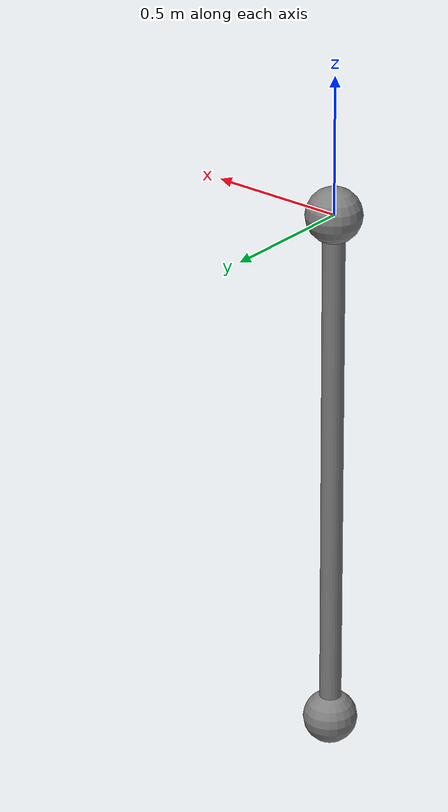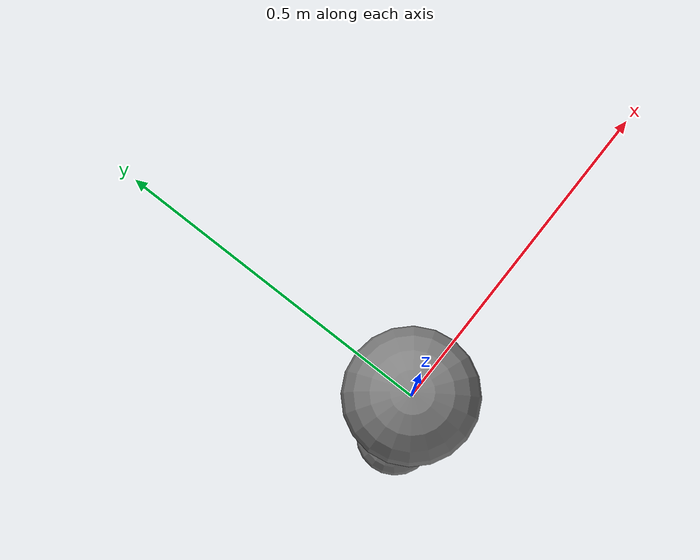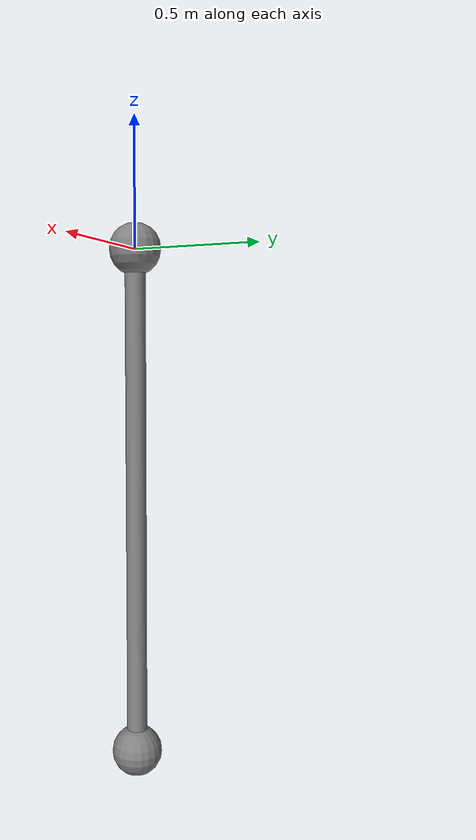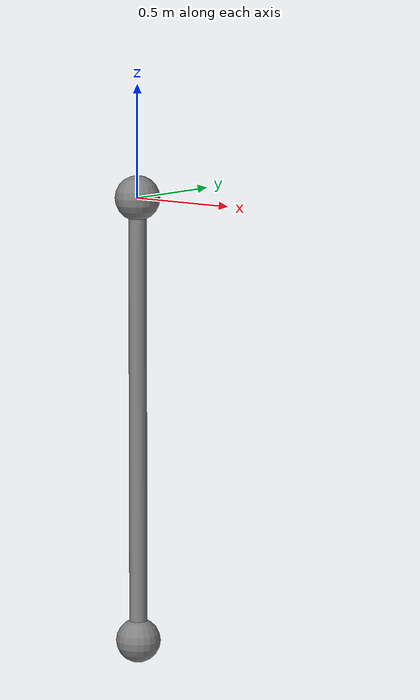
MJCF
<mujoco model="2DOF_slider_hang">

  <compiler angle = "radian" />
  <option  timestep  = '0.0001' iterations = '50' integrator = 'Euler' gravity = "0 0 -9.81" collision = 'all' />
  <asset>
     <texture type = "skybox" builtin = "flat" rgb1 = "1 1 1" width	= "200" height = "200"/>
  </asset>

  <worldbody>

		<body name='init0' pos='0 0 0' euler='0 0 0'>
			  <joint name='joint1' ref='0' type='slide' stiffness='0' pos='0 0 0' axis='1 0 0' />
				<joint name='joint2' ref='0' type='slide' stiffness='0' pos='0 0 0' axis='0 1 0' />
				<geom name='geom1' type='sphere' pos='0 0 0' size='0.1' mass='1'/>
        <site name='site1' pos='0 0 0' />
				 <!-- Comment out the following session to make it 1 DOF -->
				<body name='hanger' pos='0 0 0' euler='0 0 0'>
					<site name='forForceSensorSite' pos='0 0 0' />
					<joint name='joint3' ref='0' type='hinge' damping='0.0' stiffness='0' pos='0 0 0' axis='0 0 1' />
					<joint name='joint4' ref='0' type='hinge' damping='0.0' stiffness='0' pos='0 0 0' axis='0 1 0' />
          <site name='site2' pos='0 0 -2' />
					<geom type='cylinder' fromto='0 0 0 0 0 -2'   size='0.04' mass='0'/>
					<geom name='geom2' type='sphere' pos='0 0 -2' size='0.1' mass='1'/>
				</body>
		</body>

  </worldbody>

		<sensor>
				<force name = 'wristForceSensorSite' site = 'forForceSensorSite' />
		</sensor>

	<actuator>

		<motor joint = 'joint1' name = 'sliderjoint1' forcelimited = 'false' />
		<motor joint = 'joint2' name = 'sliderjoint2' forcelimited = 'false' />

  </actuator>

</mujoco>
